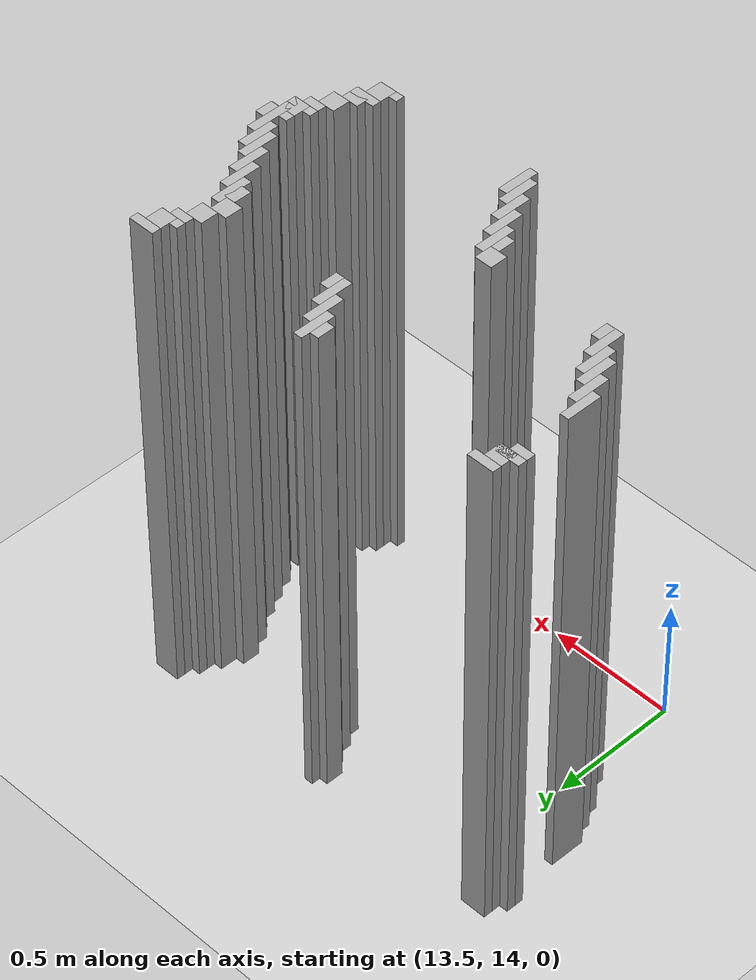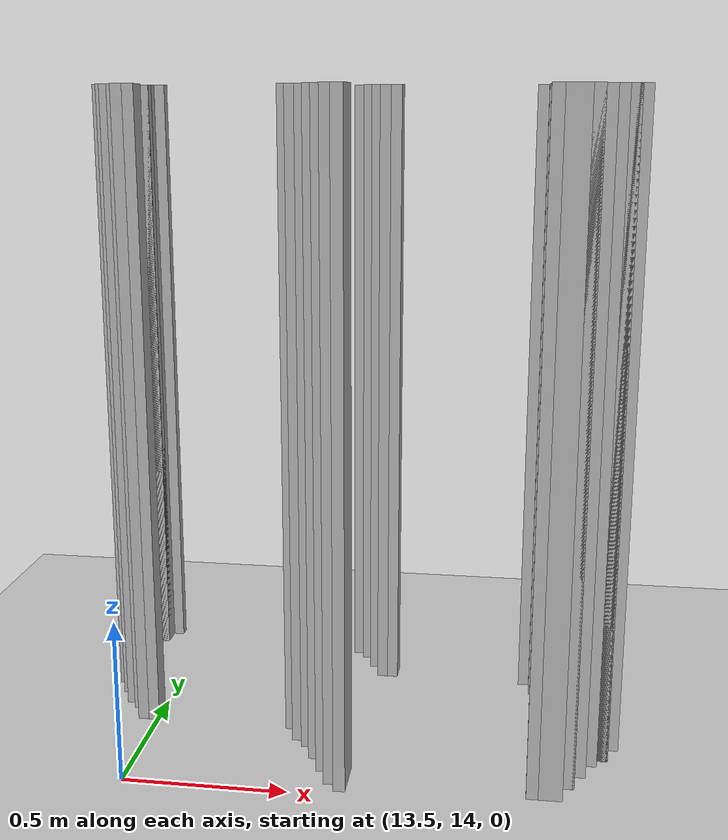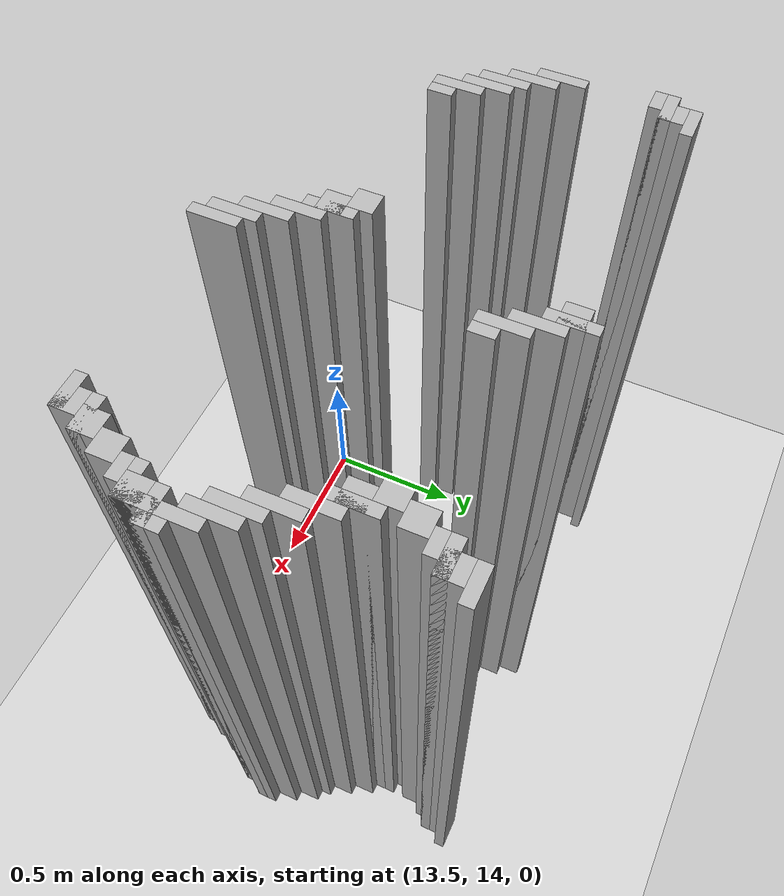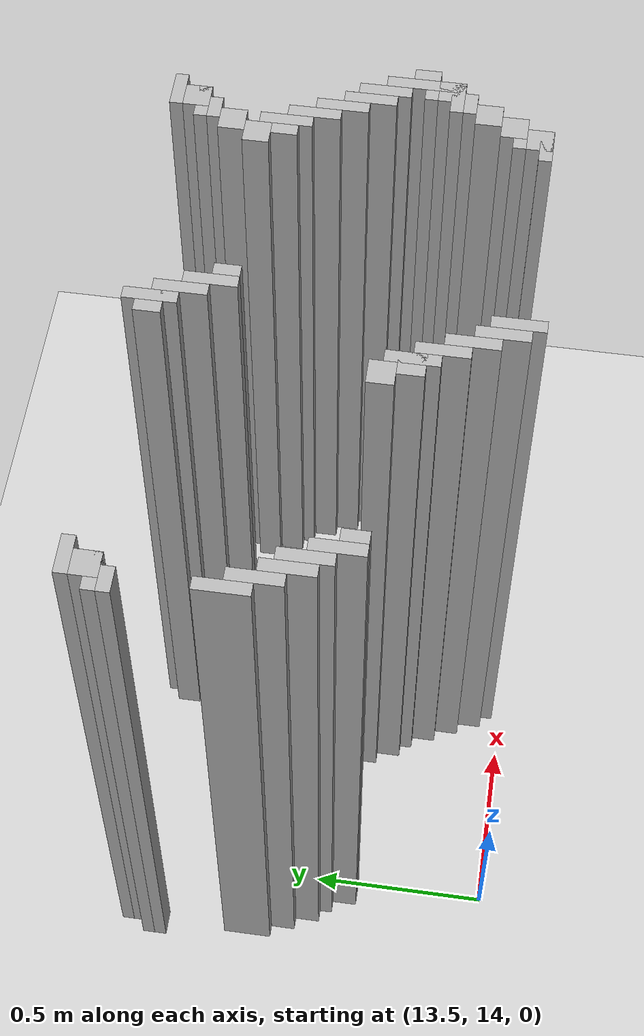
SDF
<sdf version="1.6">
 <world name="slam_world">
  <model name="ground_plane">
   <static>true</static>
   <link name="link">
    <collision name="collision">
     <geometry><plane><normal>0 0 1</normal><size>100 100</size></plane></geometry>
    </collision>
    <visual name="visual">
     <geometry><plane><normal>0 0 1</normal><size>100 100</size></plane></geometry>
     <material>
      <ambient>0.8 0.8 0.8 1</ambient>
      <diffuse>0.8 0.8 0.8 1</diffuse>
      <specular>0.8 0.8 0.8 1</specular>
     </material>
    </visual>
   </link>
  </model>
  <model name="wall_798">
   <static>true</static>
   <pose>13.346867749419953 15.052204176334106 1.0 0 0 0</pose>
   <link name="link">
    <collision name="collision">
     <geometry><box><size>0.10440835266821345 0.03480278422273782 2.0</size></box></geometry>
    </collision>
    <visual name="visual">
     <geometry><box><size>0.10440835266821345 0.03480278422273782 2.0</size></box></geometry>
     <material><ambient>0.5 0.5 0.5 1</ambient><diffuse>0.7 0.7 0.7 1</diffuse></material>
    </visual>
   </link>
  </model>
  <model name="wall_799">
   <static>true</static>
   <pose>14.112529002320185 15.0 1.0 0 0 0</pose>
   <link name="link">
    <collision name="collision">
     <geometry><box><size>0.03480278422273782 0.13921113689095127 2.0</size></box></geometry>
    </collision>
    <visual name="visual">
     <geometry><box><size>0.03480278422273782 0.13921113689095127 2.0</size></box></geometry>
     <material><ambient>0.5 0.5 0.5 1</ambient><diffuse>0.7 0.7 0.7 1</diffuse></material>
    </visual>
   </link>
  </model>
  <model name="wall_800">
   <static>true</static>
   <pose>14.80858468677494 15.052204176334106 1.0 0 0 0</pose>
   <link name="link">
    <collision name="collision">
     <geometry><box><size>0.10440835266821345 0.03480278422273782 2.0</size></box></geometry>
    </collision>
    <visual name="visual">
     <geometry><box><size>0.10440835266821345 0.03480278422273782 2.0</size></box></geometry>
     <material><ambient>0.5 0.5 0.5 1</ambient><diffuse>0.7 0.7 0.7 1</diffuse></material>
    </visual>
   </link>
  </model>
  <model name="wall_810">
   <static>true</static>
   <pose>13.329466357308585 15.0 1.0 0 0 0</pose>
   <link name="link">
    <collision name="collision">
     <geometry><box><size>0.06960556844547564 0.06960556844547564 2.0</size></box></geometry>
    </collision>
    <visual name="visual">
     <geometry><box><size>0.06960556844547564 0.06960556844547564 2.0</size></box></geometry>
     <material><ambient>0.5 0.5 0.5 1</ambient><diffuse>0.7 0.7 0.7 1</diffuse></material>
    </visual>
   </link>
  </model>
  <model name="wall_811">
   <static>true</static>
   <pose>14.095127610208817 15.0 1.0 0 0 0</pose>
   <link name="link">
    <collision name="collision">
     <geometry><box><size>0.06960556844547564 0.06960556844547564 2.0</size></box></geometry>
    </collision>
    <visual name="visual">
     <geometry><box><size>0.06960556844547564 0.06960556844547564 2.0</size></box></geometry>
     <material><ambient>0.5 0.5 0.5 1</ambient><diffuse>0.7 0.7 0.7 1</diffuse></material>
    </visual>
   </link>
  </model>
  <model name="wall_812">
   <static>true</static>
   <pose>14.791183294663572 15.0 1.0 0 0 0</pose>
   <link name="link">
    <collision name="collision">
     <geometry><box><size>0.06960556844547564 0.06960556844547564 2.0</size></box></geometry>
    </collision>
    <visual name="visual">
     <geometry><box><size>0.06960556844547564 0.06960556844547564 2.0</size></box></geometry>
     <material><ambient>0.5 0.5 0.5 1</ambient><diffuse>0.7 0.7 0.7 1</diffuse></material>
    </visual>
   </link>
  </model>
  <model name="wall_824">
   <static>true</static>
   <pose>13.312064965197216 14.982598607888631 1.0 0 0 0</pose>
   <link name="link">
    <collision name="collision">
     <geometry><box><size>0.10440835266821345 0.03480278422273782 2.0</size></box></geometry>
    </collision>
    <visual name="visual">
     <geometry><box><size>0.10440835266821345 0.03480278422273782 2.0</size></box></geometry>
     <material><ambient>0.5 0.5 0.5 1</ambient><diffuse>0.7 0.7 0.7 1</diffuse></material>
    </visual>
   </link>
  </model>
  <model name="wall_825">
   <static>true</static>
   <pose>14.147331786542923 14.930394431554523 1.0 0 0 0</pose>
   <link name="link">
    <collision name="collision">
     <geometry><box><size>0.03480278422273782 0.13921113689095127 2.0</size></box></geometry>
    </collision>
    <visual name="visual">
     <geometry><box><size>0.03480278422273782 0.13921113689095127 2.0</size></box></geometry>
     <material><ambient>0.5 0.5 0.5 1</ambient><diffuse>0.7 0.7 0.7 1</diffuse></material>
    </visual>
   </link>
  </model>
  <model name="wall_826">
   <static>true</static>
   <pose>14.773781902552203 14.982598607888631 1.0 0 0 0</pose>
   <link name="link">
    <collision name="collision">
     <geometry><box><size>0.10440835266821345 0.03480278422273782 2.0</size></box></geometry>
    </collision>
    <visual name="visual">
     <geometry><box><size>0.10440835266821345 0.03480278422273782 2.0</size></box></geometry>
     <material><ambient>0.5 0.5 0.5 1</ambient><diffuse>0.7 0.7 0.7 1</diffuse></material>
    </visual>
   </link>
  </model>
  <model name="wall_833">
   <static>true</static>
   <pose>13.294663573085847 14.947795823665892 1.0 0 0 0</pose>
   <link name="link">
    <collision name="collision">
     <geometry><box><size>0.06960556844547564 0.03480278422273782 2.0</size></box></geometry>
    </collision>
    <visual name="visual">
     <geometry><box><size>0.06960556844547564 0.03480278422273782 2.0</size></box></geometry>
     <material><ambient>0.5 0.5 0.5 1</ambient><diffuse>0.7 0.7 0.7 1</diffuse></material>
    </visual>
   </link>
  </model>
  <model name="wall_834">
   <static>true</static>
   <pose>14.756380510440835 14.947795823665892 1.0 0 0 0</pose>
   <link name="link">
    <collision name="collision">
     <geometry><box><size>0.06960556844547564 0.03480278422273782 2.0</size></box></geometry>
    </collision>
    <visual name="visual">
     <geometry><box><size>0.06960556844547564 0.03480278422273782 2.0</size></box></geometry>
     <material><ambient>0.5 0.5 0.5 1</ambient><diffuse>0.7 0.7 0.7 1</diffuse></material>
    </visual>
   </link>
  </model>
  <model name="wall_847">
   <static>true</static>
   <pose>14.18213457076566 14.860788863109049 1.0 0 0 0</pose>
   <link name="link">
    <collision name="collision">
     <geometry><box><size>0.03480278422273782 0.13921113689095127 2.0</size></box></geometry>
    </collision>
    <visual name="visual">
     <geometry><box><size>0.03480278422273782 0.13921113689095127 2.0</size></box></geometry>
     <material><ambient>0.5 0.5 0.5 1</ambient><diffuse>0.7 0.7 0.7 1</diffuse></material>
    </visual>
   </link>
  </model>
  <model name="wall_848">
   <static>true</static>
   <pose>14.721577726218097 14.895591647331786 1.0 0 0 0</pose>
   <link name="link">
    <collision name="collision">
     <geometry><box><size>0.06960556844547564 0.06960556844547564 2.0</size></box></geometry>
    </collision>
    <visual name="visual">
     <geometry><box><size>0.06960556844547564 0.06960556844547564 2.0</size></box></geometry>
     <material><ambient>0.5 0.5 0.5 1</ambient><diffuse>0.7 0.7 0.7 1</diffuse></material>
    </visual>
   </link>
  </model>
  <model name="wall_868">
   <static>true</static>
   <pose>14.2169373549884 14.825986078886311 1.0 0 0 0</pose>
   <link name="link">
    <collision name="collision">
     <geometry><box><size>0.03480278422273782 0.06960556844547564 2.0</size></box></geometry>
    </collision>
    <visual name="visual">
     <geometry><box><size>0.03480278422273782 0.06960556844547564 2.0</size></box></geometry>
     <material><ambient>0.5 0.5 0.5 1</ambient><diffuse>0.7 0.7 0.7 1</diffuse></material>
    </visual>
   </link>
  </model>
  <model name="wall_869">
   <static>true</static>
   <pose>14.68677494199536 14.825986078886311 1.0 0 0 0</pose>
   <link name="link">
    <collision name="collision">
     <geometry><box><size>0.06960556844547564 0.06960556844547564 2.0</size></box></geometry>
    </collision>
    <visual name="visual">
     <geometry><box><size>0.06960556844547564 0.06960556844547564 2.0</size></box></geometry>
     <material><ambient>0.5 0.5 0.5 1</ambient><diffuse>0.7 0.7 0.7 1</diffuse></material>
    </visual>
   </link>
  </model>
  <model name="wall_881">
   <static>true</static>
   <pose>14.738979118329466 14.756380510440835 1.0 0 0 0</pose>
   <link name="link">
    <collision name="collision">
     <geometry><box><size>0.03480278422273782 0.13921113689095127 2.0</size></box></geometry>
    </collision>
    <visual name="visual">
     <geometry><box><size>0.03480278422273782 0.13921113689095127 2.0</size></box></geometry>
     <material><ambient>0.5 0.5 0.5 1</ambient><diffuse>0.7 0.7 0.7 1</diffuse></material>
    </visual>
   </link>
  </model>
  <model name="wall_897">
   <static>true</static>
   <pose>14.721577726218097 14.756380510440835 1.0 0 0 0</pose>
   <link name="link">
    <collision name="collision">
     <geometry><box><size>0.06960556844547564 0.06960556844547564 2.0</size></box></geometry>
    </collision>
    <visual name="visual">
     <geometry><box><size>0.06960556844547564 0.06960556844547564 2.0</size></box></geometry>
     <material><ambient>0.5 0.5 0.5 1</ambient><diffuse>0.7 0.7 0.7 1</diffuse></material>
    </visual>
   </link>
  </model>
  <model name="wall_912">
   <static>true</static>
   <pose>13.312064965197216 14.68677494199536 1.0 0 0 0</pose>
   <link name="link">
    <collision name="collision">
     <geometry><box><size>0.03480278422273782 0.13921113689095127 2.0</size></box></geometry>
    </collision>
    <visual name="visual">
     <geometry><box><size>0.03480278422273782 0.13921113689095127 2.0</size></box></geometry>
     <material><ambient>0.5 0.5 0.5 1</ambient><diffuse>0.7 0.7 0.7 1</diffuse></material>
    </visual>
   </link>
  </model>
  <model name="wall_913">
   <static>true</static>
   <pose>14.773781902552203 14.68677494199536 1.0 0 0 0</pose>
   <link name="link">
    <collision name="collision">
     <geometry><box><size>0.03480278422273782 0.13921113689095127 2.0</size></box></geometry>
    </collision>
    <visual name="visual">
     <geometry><box><size>0.03480278422273782 0.13921113689095127 2.0</size></box></geometry>
     <material><ambient>0.5 0.5 0.5 1</ambient><diffuse>0.7 0.7 0.7 1</diffuse></material>
    </visual>
   </link>
  </model>
  <model name="wall_939">
   <static>true</static>
   <pose>13.346867749419953 14.617169373549883 1.0 0 0 0</pose>
   <link name="link">
    <collision name="collision">
     <geometry><box><size>0.03480278422273782 0.13921113689095127 2.0</size></box></geometry>
    </collision>
    <visual name="visual">
     <geometry><box><size>0.03480278422273782 0.13921113689095127 2.0</size></box></geometry>
     <material><ambient>0.5 0.5 0.5 1</ambient><diffuse>0.7 0.7 0.7 1</diffuse></material>
    </visual>
   </link>
  </model>
  <model name="wall_940">
   <static>true</static>
   <pose>14.80858468677494 14.617169373549883 1.0 0 0 0</pose>
   <link name="link">
    <collision name="collision">
     <geometry><box><size>0.03480278422273782 0.13921113689095127 2.0</size></box></geometry>
    </collision>
    <visual name="visual">
     <geometry><box><size>0.03480278422273782 0.13921113689095127 2.0</size></box></geometry>
     <material><ambient>0.5 0.5 0.5 1</ambient><diffuse>0.7 0.7 0.7 1</diffuse></material>
    </visual>
   </link>
  </model>
  <model name="wall_955">
   <static>true</static>
   <pose>13.38167053364269 14.547563805104408 1.0 0 0 0</pose>
   <link name="link">
    <collision name="collision">
     <geometry><box><size>0.03480278422273782 0.13921113689095127 2.0</size></box></geometry>
    </collision>
    <visual name="visual">
     <geometry><box><size>0.03480278422273782 0.13921113689095127 2.0</size></box></geometry>
     <material><ambient>0.5 0.5 0.5 1</ambient><diffuse>0.7 0.7 0.7 1</diffuse></material>
    </visual>
   </link>
  </model>
  <model name="wall_956">
   <static>true</static>
   <pose>14.84338747099768 14.547563805104408 1.0 0 0 0</pose>
   <link name="link">
    <collision name="collision">
     <geometry><box><size>0.03480278422273782 0.13921113689095127 2.0</size></box></geometry>
    </collision>
    <visual name="visual">
     <geometry><box><size>0.03480278422273782 0.13921113689095127 2.0</size></box></geometry>
     <material><ambient>0.5 0.5 0.5 1</ambient><diffuse>0.7 0.7 0.7 1</diffuse></material>
    </visual>
   </link>
  </model>
  <model name="wall_971">
   <static>true</static>
   <pose>13.416473317865428 14.512761020881669 1.0 0 0 0</pose>
   <link name="link">
    <collision name="collision">
     <geometry><box><size>0.03480278422273782 0.13921113689095127 2.0</size></box></geometry>
    </collision>
    <visual name="visual">
     <geometry><box><size>0.03480278422273782 0.13921113689095127 2.0</size></box></geometry>
     <material><ambient>0.5 0.5 0.5 1</ambient><diffuse>0.7 0.7 0.7 1</diffuse></material>
    </visual>
   </link>
  </model>
  <model name="wall_972">
   <static>true</static>
   <pose>14.878190255220417 14.512761020881669 1.0 0 0 0</pose>
   <link name="link">
    <collision name="collision">
     <geometry><box><size>0.03480278422273782 0.13921113689095127 2.0</size></box></geometry>
    </collision>
    <visual name="visual">
     <geometry><box><size>0.03480278422273782 0.13921113689095127 2.0</size></box></geometry>
     <material><ambient>0.5 0.5 0.5 1</ambient><diffuse>0.7 0.7 0.7 1</diffuse></material>
    </visual>
   </link>
  </model>
  <model name="wall_994">
   <static>true</static>
   <pose>13.451276102088167 14.443155452436194 1.0 0 0 0</pose>
   <link name="link">
    <collision name="collision">
     <geometry><box><size>0.03480278422273782 0.13921113689095127 2.0</size></box></geometry>
    </collision>
    <visual name="visual">
     <geometry><box><size>0.03480278422273782 0.13921113689095127 2.0</size></box></geometry>
     <material><ambient>0.5 0.5 0.5 1</ambient><diffuse>0.7 0.7 0.7 1</diffuse></material>
    </visual>
   </link>
  </model>
  <model name="wall_995">
   <static>true</static>
   <pose>14.912993039443155 14.408352668213457 1.0 0 0 0</pose>
   <link name="link">
    <collision name="collision">
     <geometry><box><size>0.03480278422273782 0.2088167053364269 2.0</size></box></geometry>
    </collision>
    <visual name="visual">
     <geometry><box><size>0.03480278422273782 0.2088167053364269 2.0</size></box></geometry>
     <material><ambient>0.5 0.5 0.5 1</ambient><diffuse>0.7 0.7 0.7 1</diffuse></material>
    </visual>
   </link>
  </model>
  <model name="wall_1016">
   <static>true</static>
   <pose>13.486078886310905 14.408352668213457 1.0 0 0 0</pose>
   <link name="link">
    <collision name="collision">
     <geometry><box><size>0.03480278422273782 0.06960556844547564 2.0</size></box></geometry>
    </collision>
    <visual name="visual">
     <geometry><box><size>0.03480278422273782 0.06960556844547564 2.0</size></box></geometry>
     <material><ambient>0.5 0.5 0.5 1</ambient><diffuse>0.7 0.7 0.7 1</diffuse></material>
    </visual>
   </link>
  </model>
  <model name="wall_1017">
   <static>true</static>
   <pose>13.955916473317865 14.408352668213457 1.0 0 0 0</pose>
   <link name="link">
    <collision name="collision">
     <geometry><box><size>0.06960556844547564 0.06960556844547564 2.0</size></box></geometry>
    </collision>
    <visual name="visual">
     <geometry><box><size>0.06960556844547564 0.06960556844547564 2.0</size></box></geometry>
     <material><ambient>0.5 0.5 0.5 1</ambient><diffuse>0.7 0.7 0.7 1</diffuse></material>
    </visual>
   </link>
  </model>
  <model name="wall_1018">
   <static>true</static>
   <pose>14.947795823665892 14.408352668213457 1.0 0 0 0</pose>
   <link name="link">
    <collision name="collision">
     <geometry><box><size>0.03480278422273782 0.06960556844547564 2.0</size></box></geometry>
    </collision>
    <visual name="visual">
     <geometry><box><size>0.03480278422273782 0.06960556844547564 2.0</size></box></geometry>
     <material><ambient>0.5 0.5 0.5 1</ambient><diffuse>0.7 0.7 0.7 1</diffuse></material>
    </visual>
   </link>
  </model>
  <model name="wall_1029">
   <static>true</static>
   <pose>14.008120649651971 14.33874709976798 1.0 0 0 0</pose>
   <link name="link">
    <collision name="collision">
     <geometry><box><size>0.03480278422273782 0.13921113689095127 2.0</size></box></geometry>
    </collision>
    <visual name="visual">
     <geometry><box><size>0.03480278422273782 0.13921113689095127 2.0</size></box></geometry>
     <material><ambient>0.5 0.5 0.5 1</ambient><diffuse>0.7 0.7 0.7 1</diffuse></material>
    </visual>
   </link>
  </model>
  <model name="wall_1030">
   <static>true</static>
   <pose>14.912993039443155 14.390951276102088 1.0 0 0 0</pose>
   <link name="link">
    <collision name="collision">
     <geometry><box><size>0.10440835266821345 0.03480278422273782 2.0</size></box></geometry>
    </collision>
    <visual name="visual">
     <geometry><box><size>0.10440835266821345 0.03480278422273782 2.0</size></box></geometry>
     <material><ambient>0.5 0.5 0.5 1</ambient><diffuse>0.7 0.7 0.7 1</diffuse></material>
    </visual>
   </link>
  </model>
  <model name="wall_1041">
   <static>true</static>
   <pose>13.990719257540603 14.33874709976798 1.0 0 0 0</pose>
   <link name="link">
    <collision name="collision">
     <geometry><box><size>0.06960556844547564 0.06960556844547564 2.0</size></box></geometry>
    </collision>
    <visual name="visual">
     <geometry><box><size>0.06960556844547564 0.06960556844547564 2.0</size></box></geometry>
     <material><ambient>0.5 0.5 0.5 1</ambient><diffuse>0.7 0.7 0.7 1</diffuse></material>
    </visual>
   </link>
  </model>
  <model name="wall_1042">
   <static>true</static>
   <pose>14.895591647331786 14.33874709976798 1.0 0 0 0</pose>
   <link name="link">
    <collision name="collision">
     <geometry><box><size>0.06960556844547564 0.06960556844547564 2.0</size></box></geometry>
    </collision>
    <visual name="visual">
     <geometry><box><size>0.06960556844547564 0.06960556844547564 2.0</size></box></geometry>
     <material><ambient>0.5 0.5 0.5 1</ambient><diffuse>0.7 0.7 0.7 1</diffuse></material>
    </visual>
   </link>
  </model>
  <model name="wall_1053">
   <static>true</static>
   <pose>14.042923433874709 14.269141531322505 1.0 0 0 0</pose>
   <link name="link">
    <collision name="collision">
     <geometry><box><size>0.03480278422273782 0.13921113689095127 2.0</size></box></geometry>
    </collision>
    <visual name="visual">
     <geometry><box><size>0.03480278422273782 0.13921113689095127 2.0</size></box></geometry>
     <material><ambient>0.5 0.5 0.5 1</ambient><diffuse>0.7 0.7 0.7 1</diffuse></material>
    </visual>
   </link>
  </model>
  <model name="wall_1054">
   <static>true</static>
   <pose>14.878190255220417 14.321345707656612 1.0 0 0 0</pose>
   <link name="link">
    <collision name="collision">
     <geometry><box><size>0.10440835266821345 0.03480278422273782 2.0</size></box></geometry>
    </collision>
    <visual name="visual">
     <geometry><box><size>0.10440835266821345 0.03480278422273782 2.0</size></box></geometry>
     <material><ambient>0.5 0.5 0.5 1</ambient><diffuse>0.7 0.7 0.7 1</diffuse></material>
    </visual>
   </link>
  </model>
  <model name="wall_1061">
   <static>true</static>
   <pose>14.860788863109049 14.286542923433874 1.0 0 0 0</pose>
   <link name="link">
    <collision name="collision">
     <geometry><box><size>0.06960556844547564 0.03480278422273782 2.0</size></box></geometry>
    </collision>
    <visual name="visual">
     <geometry><box><size>0.06960556844547564 0.03480278422273782 2.0</size></box></geometry>
     <material><ambient>0.5 0.5 0.5 1</ambient><diffuse>0.7 0.7 0.7 1</diffuse></material>
    </visual>
   </link>
  </model>
  <model name="wall_1072">
   <static>true</static>
   <pose>14.077726218097448 14.199535962877029 1.0 0 0 0</pose>
   <link name="link">
    <collision name="collision">
     <geometry><box><size>0.03480278422273782 0.13921113689095127 2.0</size></box></geometry>
    </collision>
    <visual name="visual">
     <geometry><box><size>0.03480278422273782 0.13921113689095127 2.0</size></box></geometry>
     <material><ambient>0.5 0.5 0.5 1</ambient><diffuse>0.7 0.7 0.7 1</diffuse></material>
    </visual>
   </link>
  </model>
  <model name="wall_1073">
   <static>true</static>
   <pose>14.825986078886311 14.234338747099768 1.0 0 0 0</pose>
   <link name="link">
    <collision name="collision">
     <geometry><box><size>0.06960556844547564 0.06960556844547564 2.0</size></box></geometry>
    </collision>
    <visual name="visual">
     <geometry><box><size>0.06960556844547564 0.06960556844547564 2.0</size></box></geometry>
     <material><ambient>0.5 0.5 0.5 1</ambient><diffuse>0.7 0.7 0.7 1</diffuse></material>
    </visual>
   </link>
  </model>
  <model name="wall_1084">
   <static>true</static>
   <pose>14.112529002320185 14.129930394431554 1.0 0 0 0</pose>
   <link name="link">
    <collision name="collision">
     <geometry><box><size>0.03480278422273782 0.13921113689095127 2.0</size></box></geometry>
    </collision>
    <visual name="visual">
     <geometry><box><size>0.03480278422273782 0.13921113689095127 2.0</size></box></geometry>
     <material><ambient>0.5 0.5 0.5 1</ambient><diffuse>0.7 0.7 0.7 1</diffuse></material>
    </visual>
   </link>
  </model>
  <model name="wall_1085">
   <static>true</static>
   <pose>14.791183294663572 14.164733178654291 1.0 0 0 0</pose>
   <link name="link">
    <collision name="collision">
     <geometry><box><size>0.06960556844547564 0.06960556844547564 2.0</size></box></geometry>
    </collision>
    <visual name="visual">
     <geometry><box><size>0.06960556844547564 0.06960556844547564 2.0</size></box></geometry>
     <material><ambient>0.5 0.5 0.5 1</ambient><diffuse>0.7 0.7 0.7 1</diffuse></material>
    </visual>
   </link>
  </model>
  <model name="wall_1096">
   <static>true</static>
   <pose>14.147331786542923 14.095127610208817 1.0 0 0 0</pose>
   <link name="link">
    <collision name="collision">
     <geometry><box><size>0.03480278422273782 0.13921113689095127 2.0</size></box></geometry>
    </collision>
    <visual name="visual">
     <geometry><box><size>0.03480278422273782 0.13921113689095127 2.0</size></box></geometry>
     <material><ambient>0.5 0.5 0.5 1</ambient><diffuse>0.7 0.7 0.7 1</diffuse></material>
    </visual>
   </link>
  </model>
  <model name="wall_1097">
   <static>true</static>
   <pose>14.773781902552203 14.147331786542923 1.0 0 0 0</pose>
   <link name="link">
    <collision name="collision">
     <geometry><box><size>0.10440835266821345 0.03480278422273782 2.0</size></box></geometry>
    </collision>
    <visual name="visual">
     <geometry><box><size>0.10440835266821345 0.03480278422273782 2.0</size></box></geometry>
     <material><ambient>0.5 0.5 0.5 1</ambient><diffuse>0.7 0.7 0.7 1</diffuse></material>
    </visual>
   </link>
  </model>
  <model name="wall_1104">
   <static>true</static>
   <pose>14.756380510440835 14.095127610208817 1.0 0 0 0</pose>
   <link name="link">
    <collision name="collision">
     <geometry><box><size>0.06960556844547564 0.06960556844547564 2.0</size></box></geometry>
    </collision>
    <visual name="visual">
     <geometry><box><size>0.06960556844547564 0.06960556844547564 2.0</size></box></geometry>
     <material><ambient>0.5 0.5 0.5 1</ambient><diffuse>0.7 0.7 0.7 1</diffuse></material>
    </visual>
   </link>
  </model>
  <model name="wall_1116">
   <static>true</static>
   <pose>14.738979118329466 14.077726218097448 1.0 0 0 0</pose>
   <link name="link">
    <collision name="collision">
     <geometry><box><size>0.10440835266821345 0.03480278422273782 2.0</size></box></geometry>
    </collision>
    <visual name="visual">
     <geometry><box><size>0.10440835266821345 0.03480278422273782 2.0</size></box></geometry>
     <material><ambient>0.5 0.5 0.5 1</ambient><diffuse>0.7 0.7 0.7 1</diffuse></material>
    </visual>
   </link>
  </model>
 </world>
</sdf>
